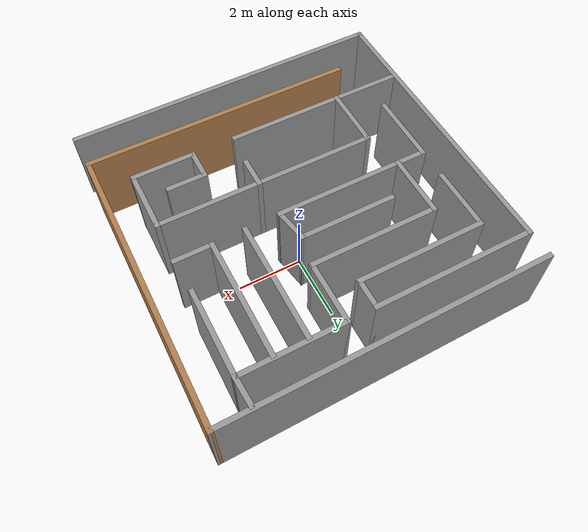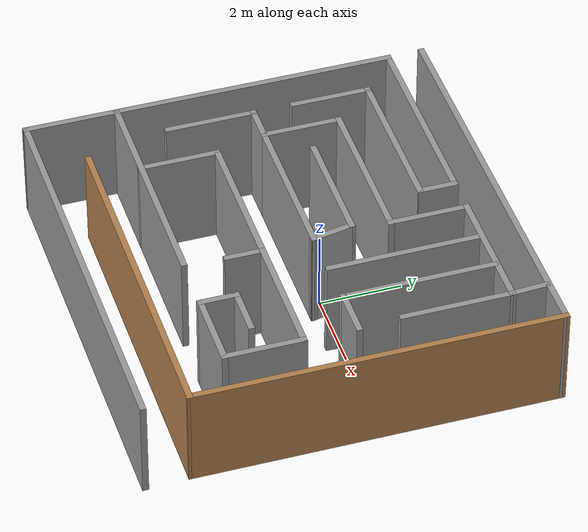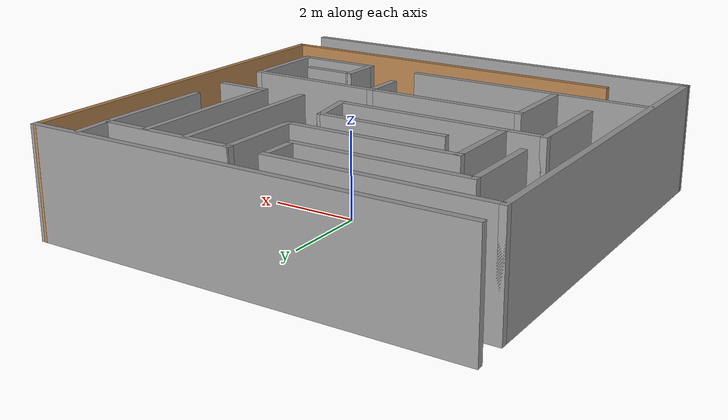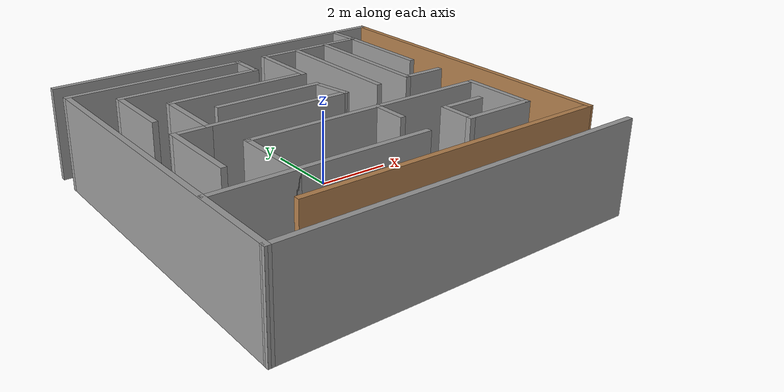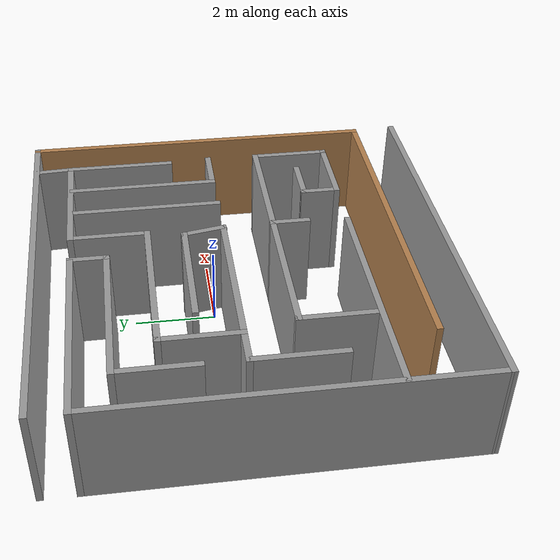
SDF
<?xml version='1.0'?>
<sdf version='1.7'>
  <model name='Maze'>
    <pose>-0.325 -0.648131 0 0 -0 0</pose>
    <link name='Wall_1'>
      <collision name='Wall_1_Collision'>
        <geometry>
          <box>
            <size>10 0.15 2.5</size>
          </box>
        </geometry>
        <pose>0 0 1.25 0 -0 0</pose>
      </collision>
      <visual name='Wall_1_Visual'>
        <pose>0 0 1.25 0 -0 0</pose>
        <geometry>
          <box>
            <size>10 0.15 2.5</size>
          </box>
        </geometry>
        <material>
          <script>
            <uri>file://media/materials/scripts/gazebo.material</uri>
            <name>Gazebo/Grey</name>
          </script>
          <ambient>1 1 1 1</ambient>
        </material>
        <meta>
          <layer>0</layer>
        </meta>
      </visual>
      <pose>-0 4.925 0 0 -0 0.004697</pose>
    </link>
    <link name='Wall_11'>
      <collision name='Wall_11_Collision'>
        <geometry>
          <box>
            <size>1 0.15 2.5</size>
          </box>
        </geometry>
        <pose>0 0 1.25 0 -0 0</pose>
      </collision>
      <visual name='Wall_11_Visual'>
        <pose>0 0 1.25 0 -0 0</pose>
        <geometry>
          <box>
            <size>1 0.15 2.5</size>
          </box>
        </geometry>
        <material>
          <script>
            <uri>file://media/materials/scripts/gazebo.material</uri>
            <name>Gazebo/Grey</name>
          </script>
          <ambient>1 1 1 1</ambient>
        </material>
        <meta>
          <layer>0</layer>
        </meta>
      </visual>
      <pose>-0.075 3.62687 0 0 -0 -1.5708</pose>
    </link>
    <link name='Wall_12'>
      <collision name='Wall_12_Collision'>
        <geometry>
          <box>
            <size>4 0.15 2.5</size>
          </box>
        </geometry>
        <pose>0 0 1.25 0 -0 0</pose>
      </collision>
      <visual name='Wall_12_Visual'>
        <pose>0 0 1.25 0 -0 0</pose>
        <geometry>
          <box>
            <size>4 0.15 2.5</size>
          </box>
        </geometry>
        <material>
          <script>
            <uri>file://media/materials/scripts/gazebo.material</uri>
            <name>Gazebo/Grey</name>
          </script>
          <ambient>1 1 1 1</ambient>
        </material>
        <meta>
          <layer>0</layer>
        </meta>
      </visual>
      <pose>-2 3.20187 0 0 -0 3.14159</pose>
    </link>
    <link name='Wall_13'>
      <collision name='Wall_13_Collision'>
        <geometry>
          <box>
            <size>2 0.15 2.5</size>
          </box>
        </geometry>
        <pose>0 0 1.25 0 -0 0</pose>
      </collision>
      <visual name='Wall_13_Visual'>
        <pose>0 0 1.25 0 -0 0</pose>
        <geometry>
          <box>
            <size>2 0.15 2.5</size>
          </box>
        </geometry>
        <material>
          <script>
            <uri>file://media/materials/scripts/gazebo.material</uri>
            <name>Gazebo/Grey</name>
          </script>
          <ambient>1 1 1 1</ambient>
        </material>
        <meta>
          <layer>0</layer>
        </meta>
      </visual>
      <pose>-3.925 2.27687 0 0 -0 -1.5708</pose>
    </link>
    <link name='Wall_15'>
      <collision name='Wall_15_Collision'>
        <geometry>
          <box>
            <size>2 0.15 2.5</size>
          </box>
        </geometry>
        <pose>0 0 1.25 0 -0 0</pose>
      </collision>
      <visual name='Wall_15_Visual'>
        <pose>0 0 1.25 0 -0 0</pose>
        <geometry>
          <box>
            <size>2 0.15 2.5</size>
          </box>
        </geometry>
        <material>
          <script>
            <uri>file://media/materials/scripts/gazebo.material</uri>
            <name>Gazebo/Grey</name>
          </script>
          <ambient>1 1 1 1</ambient>
        </material>
        <meta>
          <layer>0</layer>
        </meta>
      </visual>
      <pose>0.775 3.12687 0 0 -0 -1.5708</pose>
    </link>
    <link name='Wall_16'>
      <collision name='Wall_16_Collision'>
        <geometry>
          <box>
            <size>4 0.15 2.5</size>
          </box>
        </geometry>
        <pose>0 0 1.25 0 -0 0</pose>
      </collision>
      <visual name='Wall_16_Visual'>
        <pose>0 0 1.25 0 -0 0</pose>
        <geometry>
          <box>
            <size>4 0.15 2.5</size>
          </box>
        </geometry>
        <material>
          <script>
            <uri>file://media/materials/scripts/gazebo.material</uri>
            <name>Gazebo/Grey</name>
          </script>
          <ambient>1 1 1 1</ambient>
        </material>
        <meta>
          <layer>0</layer>
        </meta>
      </visual>
      <pose>-1.15 2.20187 0 0 -0 3.14159</pose>
    </link>
    <link name='Wall_17'>
      <collision name='Wall_17_Collision'>
        <geometry>
          <box>
            <size>2 0.15 2.5</size>
          </box>
        </geometry>
        <pose>0 0 1.25 0 -0 0</pose>
      </collision>
      <visual name='Wall_17_Visual'>
        <pose>0 0 1.25 0 -0 0</pose>
        <geometry>
          <box>
            <size>2 0.15 2.5</size>
          </box>
        </geometry>
        <material>
          <script>
            <uri>file://media/materials/scripts/gazebo.material</uri>
            <name>Gazebo/Grey</name>
          </script>
          <ambient>1 1 1 1</ambient>
        </material>
        <meta>
          <layer>0</layer>
        </meta>
      </visual>
      <pose>-3.075 1.27687 0 0 -0 -1.5708</pose>
    </link>
    <link name='Wall_19'>
      <collision name='Wall_19_Collision'>
        <geometry>
          <box>
            <size>4 0.15 2.5</size>
          </box>
        </geometry>
        <pose>0 0 1.25 0 -0 0</pose>
      </collision>
      <visual name='Wall_19_Visual'>
        <pose>0 0 1.25 0 -0 0</pose>
        <geometry>
          <box>
            <size>4 0.15 2.5</size>
          </box>
        </geometry>
        <material>
          <script>
            <uri>file://media/materials/scripts/gazebo.material</uri>
            <name>Gazebo/Grey</name>
          </script>
          <ambient>1 1 1 1</ambient>
        </material>
        <meta>
          <layer>0</layer>
        </meta>
      </visual>
      <pose>-1.15 0.351869 0 0 -0 0</pose>
    </link>
    <link name='Wall_21'>
      <collision name='Wall_21_Collision'>
        <geometry>
          <box>
            <size>1 0.15 2.5</size>
          </box>
        </geometry>
        <pose>0 0 1.25 0 -0 0</pose>
      </collision>
      <visual name='Wall_21_Visual'>
        <pose>0 0 1.25 0 -0 0</pose>
        <geometry>
          <box>
            <size>1 0.15 2.5</size>
          </box>
        </geometry>
        <material>
          <script>
            <uri>file://media/materials/scripts/gazebo.material</uri>
            <name>Gazebo/Grey</name>
          </script>
          <ambient>1 1 1 1</ambient>
        </material>
        <meta>
          <layer>0</layer>
        </meta>
      </visual>
      <pose>-3.5 0.351869 0 0 -0 3.14159</pose>
    </link>
    <link name='Wall_22'>
      <collision name='Wall_22_Collision'>
        <geometry>
          <box>
            <size>2.25 0.15 2.5</size>
          </box>
        </geometry>
        <pose>0 0 1.25 0 -0 0</pose>
      </collision>
      <visual name='Wall_22_Visual'>
        <pose>0 0 1.25 0 -0 0</pose>
        <geometry>
          <box>
            <size>2.25 0.15 2.5</size>
          </box>
        </geometry>
        <material>
          <script>
            <uri>file://media/materials/scripts/gazebo.material</uri>
            <name>Gazebo/Grey</name>
          </script>
          <ambient>1 1 1 1</ambient>
        </material>
        <meta>
          <layer>0</layer>
        </meta>
      </visual>
      <pose>-3.925 -0.698131 0 0 -0 -1.5708</pose>
    </link>
    <link name='Wall_24'>
      <collision name='Wall_24_Collision'>
        <geometry>
          <box>
            <size>5.75 0.15 2.5</size>
          </box>
        </geometry>
        <pose>0 0 1.25 0 -0 0</pose>
      </collision>
      <visual name='Wall_24_Visual'>
        <pose>0 0 1.25 0 -0 0</pose>
        <geometry>
          <box>
            <size>5.75 0.15 2.5</size>
          </box>
        </geometry>
        <material>
          <script>
            <uri>file://media/materials/scripts/gazebo.material</uri>
            <name>Gazebo/Grey</name>
          </script>
          <ambient>1 1 1 1</ambient>
        </material>
        <meta>
          <layer>0</layer>
        </meta>
      </visual>
      <pose>-2.09104 -2.73223 0 0 -0 0</pose>
    </link>
    <link name='Wall_26'>
      <collision name='Wall_26_Collision'>
        <geometry>
          <box>
            <size>3 0.15 2.5</size>
          </box>
        </geometry>
        <pose>0 0 1.25 0 -0 0</pose>
      </collision>
      <visual name='Wall_26_Visual'>
        <pose>0 0 1.25 0 -0 0</pose>
        <geometry>
          <box>
            <size>3 0.15 2.5</size>
          </box>
        </geometry>
        <material>
          <script>
            <uri>file://media/materials/scripts/gazebo.material</uri>
            <name>Gazebo/Grey</name>
          </script>
          <ambient>1 1 1 1</ambient>
        </material>
        <meta>
          <layer>0</layer>
        </meta>
      </visual>
      <pose>-0.829155 1.31562 0 0 -0 0</pose>
    </link>
    <link name='Wall_27'>
      <collision name='Wall_27_Collision'>
        <geometry>
          <box>
            <size>1.13026 0.15 2.5</size>
          </box>
        </geometry>
        <pose>0 0 1.25 0 -0 0</pose>
      </collision>
      <visual name='Wall_27_Visual'>
        <pose>0 0 1.25 0 -0 0</pose>
        <geometry>
          <box>
            <size>1.13026 0.15 2.5</size>
          </box>
        </geometry>
        <material>
          <script>
            <uri>file://media/materials/scripts/gazebo.material</uri>
            <name>Gazebo/Grey</name>
          </script>
          <ambient>1 1 1 1</ambient>
        </material>
        <meta>
          <layer>0</layer>
        </meta>
      </visual>
      <pose>0.685422 0.833746 0 0 -0 -1.387</pose>
    </link>
    <link name='Wall_3'>
      <collision name='Wall_3_Collision'>
        <geometry>
          <box>
            <size>10 0.15 2.5</size>
          </box>
        </geometry>
        <pose>0 0 1.25 0 -0 0</pose>
      </collision>
      <visual name='Wall_3_Visual'>
        <pose>0 0 1.25 0 -0 0</pose>
        <geometry>
          <box>
            <size>10 0.15 2.5</size>
          </box>
        </geometry>
        <material>
          <script>
            <uri>file://media/materials/scripts/gazebo.material</uri>
            <name>Gazebo/Grey</name>
          </script>
          <ambient>1 1 1 1</ambient>
        </material>
        <meta>
          <layer>0</layer>
        </meta>
      </visual>
      <pose>-0 -4.925 0 0 -0 -3.1369</pose>
    </link>
    <link name='Wall_30'>
      <collision name='Wall_30_Collision'>
        <geometry>
          <box>
            <size>2 0.15 2.5</size>
          </box>
        </geometry>
        <pose>0 0 1.25 0 -0 0</pose>
      </collision>
      <visual name='Wall_30_Visual'>
        <pose>0 0 1.25 0 -0 0</pose>
        <geometry>
          <box>
            <size>2 0.15 2.5</size>
          </box>
        </geometry>
        <material>
          <script>
            <uri>file://media/materials/scripts/gazebo.material</uri>
            <name>Gazebo/Grey</name>
          </script>
          <ambient>1 1 1 1</ambient>
        </material>
        <meta>
          <layer>0</layer>
        </meta>
      </visual>
      <pose>-2.78616 -1.80723 0 0 -0 1.5708</pose>
    </link>
    <link name='Wall_31'>
      <collision name='Wall_31_Collision'>
        <geometry>
          <box>
            <size>3.75 0.15 2.5</size>
          </box>
        </geometry>
        <pose>0 0 1.25 0 -0 0</pose>
      </collision>
      <visual name='Wall_31_Visual'>
        <pose>0 0 1.25 0 -0 0</pose>
        <geometry>
          <box>
            <size>3.75 0.15 2.5</size>
          </box>
        </geometry>
        <material>
          <script>
            <uri>file://media/materials/scripts/gazebo.material</uri>
            <name>Gazebo/Grey</name>
          </script>
          <ambient>1 1 1 1</ambient>
        </material>
        <meta>
          <layer>0</layer>
        </meta>
      </visual>
      <pose>-0.986159 -0.882234 0 0 -0 0</pose>
    </link>
    <link name='Wall_32'>
      <collision name='Wall_32_Collision'>
        <geometry>
          <box>
            <size>1 0.15 2.5</size>
          </box>
        </geometry>
        <pose>0 0 1.25 0 -0 0</pose>
      </collision>
      <visual name='Wall_32_Visual'>
        <pose>0 0 1.25 0 -0 0</pose>
        <geometry>
          <box>
            <size>1 0.15 2.5</size>
          </box>
        </geometry>
        <material>
          <script>
            <uri>file://media/materials/scripts/gazebo.material</uri>
            <name>Gazebo/Grey</name>
          </script>
          <ambient>1 1 1 1</ambient>
        </material>
        <meta>
          <layer>0</layer>
        </meta>
      </visual>
      <pose>0.813841 -1.30723 0 0 -0 -1.5708</pose>
    </link>
    <link name='Wall_37'>
      <collision name='Wall_37_Collision'>
        <geometry>
          <box>
            <size>8.5 0.15 2.5</size>
          </box>
        </geometry>
        <pose>0 0 1.25 0 -0 0</pose>
      </collision>
      <visual name='Wall_37_Visual'>
        <pose>0 0 1.25 0 -0 0</pose>
        <geometry>
          <box>
            <size>8.5 0.15 2.5</size>
          </box>
        </geometry>
        <material>
          <script>
            <uri>file://media/materials/scripts/gazebo.material</uri>
            <name>Gazebo/Wood</name>
          </script>
          <ambient>1 1 1 1</ambient>
        </material>
        <meta>
          <layer>0</layer>
        </meta>
      </visual>
      <pose>0.718203 -3.81937 0 0 -0 3.14159</pose>
    </link>
    <link name='Wall_39'>
      <collision name='Wall_39_Collision'>
        <geometry>
          <box>
            <size>0.977136 0.15 2.5</size>
          </box>
        </geometry>
        <pose>0 0 1.25 0 -0 0</pose>
      </collision>
      <visual name='Wall_39_Visual'>
        <pose>0 0 1.25 0 -0 0</pose>
        <geometry>
          <box>
            <size>0.977136 0.15 2.5</size>
          </box>
        </geometry>
        <material>
          <script>
            <uri>file://media/materials/scripts/gazebo.material</uri>
            <name>Gazebo/Grey</name>
          </script>
          <ambient>1 1 1 1</ambient>
        </material>
        <meta>
          <layer>0</layer>
        </meta>
      </visual>
      <pose>3.8521 4.4648 0 0 -0 -1.51539</pose>
    </link>
    <link name='Wall_41'>
      <collision name='Wall_41_Collision'>
        <geometry>
          <box>
            <size>3.25 0.15 2.5</size>
          </box>
        </geometry>
        <pose>0 0 1.25 0 -0 0</pose>
      </collision>
      <visual name='Wall_41_Visual'>
        <pose>0 0 1.25 0 -0 0</pose>
        <geometry>
          <box>
            <size>3.25 0.15 2.5</size>
          </box>
        </geometry>
        <material>
          <script>
            <uri>file://media/materials/scripts/gazebo.material</uri>
            <name>Gazebo/Grey</name>
          </script>
          <ambient>1 1 1 1</ambient>
        </material>
        <meta>
          <layer>0</layer>
        </meta>
      </visual>
      <pose>2.36384 -0.882234 0 0 -0 0</pose>
    </link>
    <link name='Wall_43'>
      <collision name='Wall_43_Collision'>
        <geometry>
          <box>
            <size>2 0.15 2.5</size>
          </box>
        </geometry>
        <pose>0 0 1.25 0 -0 0</pose>
      </collision>
      <visual name='Wall_43_Visual'>
        <pose>0 0 1.25 0 -0 0</pose>
        <geometry>
          <box>
            <size>2 0.15 2.5</size>
          </box>
        </geometry>
        <material>
          <script>
            <uri>file://media/materials/scripts/gazebo.material</uri>
            <name>Gazebo/Grey</name>
          </script>
          <ambient>1 1 1 1</ambient>
        </material>
        <meta>
          <layer>0</layer>
        </meta>
      </visual>
      <pose>3.91384 -1.80723 0 0 -0 -1.5708</pose>
    </link>
    <link name='Wall_44'>
      <collision name='Wall_44_Collision'>
        <geometry>
          <box>
            <size>2 0.15 2.5</size>
          </box>
        </geometry>
        <pose>0 0 1.25 0 -0 0</pose>
      </collision>
      <visual name='Wall_44_Visual'>
        <pose>0 0 1.25 0 -0 0</pose>
        <geometry>
          <box>
            <size>2 0.15 2.5</size>
          </box>
        </geometry>
        <material>
          <script>
            <uri>file://media/materials/scripts/gazebo.material</uri>
            <name>Gazebo/Grey</name>
          </script>
          <ambient>1 1 1 1</ambient>
        </material>
        <meta>
          <layer>0</layer>
        </meta>
      </visual>
      <pose>2.98884 -2.73223 0 0 -0 3.14159</pose>
    </link>
    <link name='Wall_45'>
      <collision name='Wall_45_Collision'>
        <geometry>
          <box>
            <size>1 0.15 2.5</size>
          </box>
        </geometry>
        <pose>0 0 1.25 0 -0 0</pose>
      </collision>
      <visual name='Wall_45_Visual'>
        <pose>0 0 1.25 0 -0 0</pose>
        <geometry>
          <box>
            <size>1 0.15 2.5</size>
          </box>
        </geometry>
        <material>
          <script>
            <uri>file://media/materials/scripts/gazebo.material</uri>
            <name>Gazebo/Grey</name>
          </script>
          <ambient>1 1 1 1</ambient>
        </material>
        <meta>
          <layer>0</layer>
        </meta>
      </visual>
      <pose>2.06384 -2.30723 0 0 -0 1.5708</pose>
    </link>
    <link name='Wall_46'>
      <collision name='Wall_46_Collision'>
        <geometry>
          <box>
            <size>1.25 0.15 2.5</size>
          </box>
        </geometry>
        <pose>0 0 1.25 0 -0 0</pose>
      </collision>
      <visual name='Wall_46_Visual'>
        <pose>0 0 1.25 0 -0 0</pose>
        <geometry>
          <box>
            <size>1.25 0.15 2.5</size>
          </box>
        </geometry>
        <material>
          <script>
            <uri>file://media/materials/scripts/gazebo.material</uri>
            <name>Gazebo/Grey</name>
          </script>
          <ambient>1 1 1 1</ambient>
        </material>
        <meta>
          <layer>0</layer>
        </meta>
      </visual>
      <pose>2.61384 -1.88223 0 0 -0 0</pose>
    </link>
    <link name='Wall_49'>
      <collision name='Wall_49_Collision'>
        <geometry>
          <box>
            <size>3.75 0.15 2.5</size>
          </box>
        </geometry>
        <pose>0 0 1.25 0 -0 0</pose>
      </collision>
      <visual name='Wall_49_Visual'>
        <pose>0 0 1.25 0 -0 0</pose>
        <geometry>
          <box>
            <size>3.75 0.15 2.5</size>
          </box>
        </geometry>
        <material>
          <script>
            <uri>file://media/materials/scripts/gazebo.material</uri>
            <name>Gazebo/Grey</name>
          </script>
          <ambient>1 1 1 1</ambient>
        </material>
        <meta>
          <layer>0</layer>
        </meta>
      </visual>
      <pose>1.83996 2.17564 0 0 -0 -1.5708</pose>
    </link>
    <link name='Wall_51'>
      <collision name='Wall_51_Collision'>
        <geometry>
          <box>
            <size>3.75 0.15 2.5</size>
          </box>
        </geometry>
        <pose>0 0 1.25 0 -0 0</pose>
      </collision>
      <visual name='Wall_51_Visual'>
        <pose>0 0 1.25 0 -0 0</pose>
        <geometry>
          <box>
            <size>3.75 0.15 2.5</size>
          </box>
        </geometry>
        <material>
          <script>
            <uri>file://media/materials/scripts/gazebo.material</uri>
            <name>Gazebo/Grey</name>
          </script>
          <ambient>1 1 1 1</ambient>
        </material>
        <meta>
          <layer>0</layer>
        </meta>
      </visual>
      <pose>2.83458 2.19877 0 0 -0 -1.5708</pose>
    </link>
    <link name='Wall_52'>
      <collision name='Wall_52_Collision'>
        <geometry>
          <box>
            <size>1.25 0.15 2.5</size>
          </box>
        </geometry>
        <pose>0 0 1.25 0 -0 0</pose>
      </collision>
      <visual name='Wall_52_Visual'>
        <pose>0 0 1.25 0 -0 0</pose>
        <geometry>
          <box>
            <size>1.25 0.15 2.5</size>
          </box>
        </geometry>
        <material>
          <script>
            <uri>file://media/materials/scripts/gazebo.material</uri>
            <name>Gazebo/Grey</name>
          </script>
          <ambient>1 1 1 1</ambient>
        </material>
        <meta>
          <layer>0</layer>
        </meta>
      </visual>
      <pose>3.38458 0.398773 0 0 -0 0</pose>
    </link>
    <link name='Wall_54'>
      <collision name='Wall_54_Collision'>
        <geometry>
          <box>
            <size>2.75 0.15 2.5</size>
          </box>
        </geometry>
        <pose>0 0 1.25 0 -0 0</pose>
      </collision>
      <visual name='Wall_54_Visual'>
        <pose>0 0 1.25 0 -0 0</pose>
        <geometry>
          <box>
            <size>2.75 0.15 2.5</size>
          </box>
        </geometry>
        <material>
          <script>
            <uri>file://media/materials/scripts/gazebo.material</uri>
            <name>Gazebo/Grey</name>
          </script>
          <ambient>1 1 1 1</ambient>
        </material>
        <meta>
          <layer>0</layer>
        </meta>
      </visual>
      <pose>3.875 2.75187 0 0 -0 -1.5708</pose>
    </link>
    <link name='Wall_56'>
      <collision name='Wall_56_Collision'>
        <geometry>
          <box>
            <size>9.15 0.15 2.5</size>
          </box>
        </geometry>
        <pose>0 0 1.25 0 -0 0</pose>
      </collision>
      <visual name='Wall_56_Visual'>
        <pose>0 0 1.25 0 -0 0</pose>
        <geometry>
          <box>
            <size>9.15 0.15 2.5</size>
          </box>
        </geometry>
        <material>
          <script>
            <uri>file://media/materials/scripts/gazebo.material</uri>
            <name>Gazebo/Grey</name>
          </script>
          <ambient>1 1 1 1</ambient>
        </material>
        <meta>
          <layer>0</layer>
        </meta>
      </visual>
      <pose>-4.925 -0.448131 0 0 -0 -1.5708</pose>
    </link>
    <link name='Wall_58'>
      <collision name='Wall_58_Collision'>
        <geometry>
          <box>
            <size>8.91756 0.15 2.5</size>
          </box>
        </geometry>
        <pose>0 0 1.25 0 -0 0</pose>
      </collision>
      <visual name='Wall_58_Visual'>
        <pose>0 0 1.25 0 -0 0</pose>
        <geometry>
          <box>
            <size>8.91756 0.15 2.5</size>
          </box>
        </geometry>
        <material>
          <script>
            <uri>file://media/materials/scripts/gazebo.material</uri>
            <name>Gazebo/Wood</name>
          </script>
          <ambient>1 1 1 1</ambient>
        </material>
        <meta>
          <layer>0</layer>
        </meta>
      </visual>
      <pose>4.9091 0.564379 0 0 -0 -1.57442</pose>
    </link>
    <link name='Wall_7'>
      <collision name='Wall_7_Collision'>
        <geometry>
          <box>
            <size>5 0.15 2.5</size>
          </box>
        </geometry>
        <pose>0 0 1.25 0 -0 0</pose>
      </collision>
      <visual name='Wall_7_Visual'>
        <pose>0 0 1.25 0 -0 0</pose>
        <geometry>
          <box>
            <size>5 0.15 2.5</size>
          </box>
        </geometry>
        <material>
          <script>
            <uri>file://media/materials/scripts/gazebo.material</uri>
            <name>Gazebo/Grey</name>
          </script>
          <ambient>1 1 1 1</ambient>
        </material>
        <meta>
          <layer>0</layer>
        </meta>
      </visual>
      <pose>-2.5 4.05187 0 0 -0 0</pose>
    </link>
    <link name='Wall_9'>
      <collision name='Wall_9_Collision'>
        <geometry>
          <box>
            <size>3.25 0.15 2.5</size>
          </box>
        </geometry>
        <pose>0 0 1.25 0 -0 0</pose>
      </collision>
      <visual name='Wall_9_Visual'>
        <pose>0 0 1.25 0 -0 0</pose>
        <geometry>
          <box>
            <size>3.25 0.15 2.5</size>
          </box>
        </geometry>
        <material>
          <script>
            <uri>file://media/materials/scripts/gazebo.material</uri>
            <name>Gazebo/Grey</name>
          </script>
          <ambient>1 1 1 1</ambient>
        </material>
        <meta>
          <layer>0</layer>
        </meta>
      </visual>
      <pose>2.325 4.05187 0 0 -0 0</pose>
    </link>
    <static>1</static>
  </model>
</sdf>
